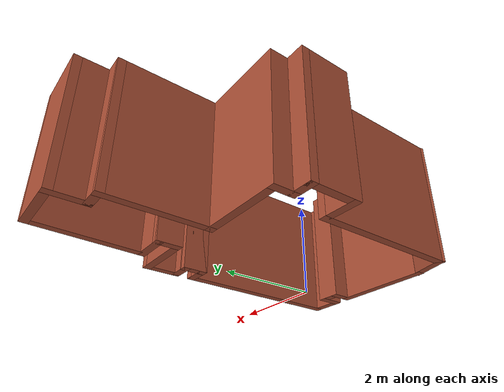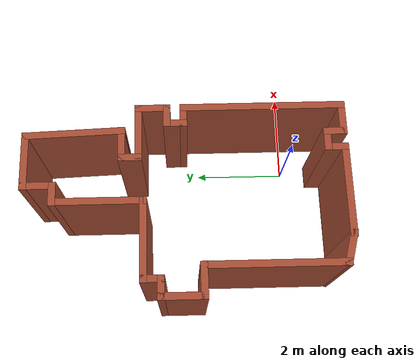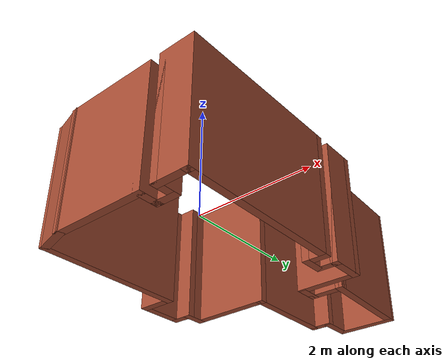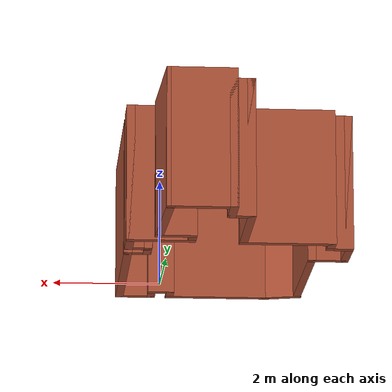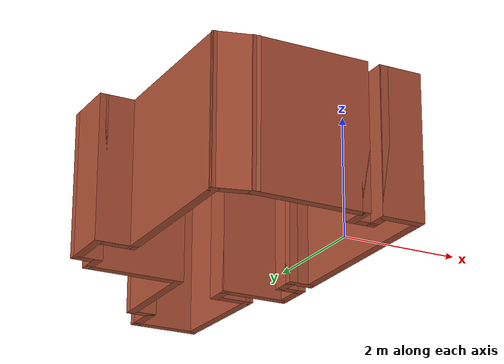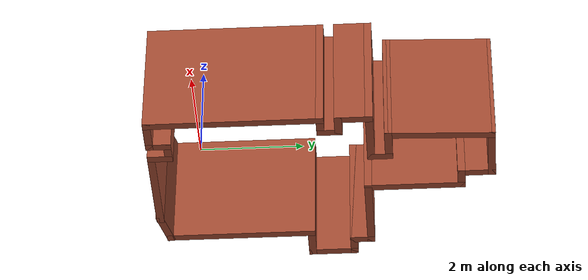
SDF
<?xml version='1.0'?>
<sdf version='1.6'>
  <model name='map_44'>
    <pose frame=''>-1.27662 2.32207 0 0 -0 0</pose>
    <link name='Wall_0'>
      <collision name='Wall_0_Collision'>
        <geometry>
          <box>
            <size>1.25 0.15 2.5</size>
          </box>
        </geometry>
        <pose frame=''>0 0 1.25 0 -0 0</pose>
      </collision>
      <visual name='Wall_0_Visual'>
        <pose frame=''>0 0 1.25 0 -0 0</pose>
        <geometry>
          <box>
            <size>1.25 0.15 2.5</size>
          </box>
        </geometry>
        <material>
          <script>
            <uri>file://media/materials/scripts/gazebo.material</uri>
            <name>Gazebo/Bricks</name>
          </script>
          <ambient>1 1 1 1</ambient>
        </material>
        <meta>
          <layer>0</layer>
        </meta>
      </visual>
      <pose frame=''>0.860222 3.33462 0 0 -0 3.14159</pose>
    </link>
    <link name='Wall_1'>
      <collision name='Wall_1_Collision'>
        <geometry>
          <box>
            <size>0.75 0.15 2.5</size>
          </box>
        </geometry>
        <pose frame=''>0 0 1.25 0 -0 0</pose>
      </collision>
      <visual name='Wall_1_Visual'>
        <pose frame=''>0 0 1.25 0 -0 0</pose>
        <geometry>
          <box>
            <size>0.75 0.15 2.5</size>
          </box>
        </geometry>
        <material>
          <script>
            <uri>file://media/materials/scripts/gazebo.material</uri>
            <name>Gazebo/Bricks</name>
          </script>
          <ambient>1 1 1 1</ambient>
        </material>
        <meta>
          <layer>0</layer>
        </meta>
      </visual>
      <pose frame=''>0.310222 3.03462 0 0 -0 -1.5708</pose>
    </link>
    <link name='Wall_13'>
      <collision name='Wall_13_Collision'>
        <geometry>
          <box>
            <size>2 0.15 2.5</size>
          </box>
        </geometry>
        <pose frame=''>0 0 1.25 0 -0 0</pose>
      </collision>
      <visual name='Wall_13_Visual'>
        <pose frame=''>0 0 1.25 0 -0 0</pose>
        <geometry>
          <box>
            <size>2 0.15 2.5</size>
          </box>
        </geometry>
        <material>
          <script>
            <uri>file://media/materials/scripts/gazebo.material</uri>
            <name>Gazebo/Bricks</name>
          </script>
          <ambient>1 1 1 1</ambient>
        </material>
        <meta>
          <layer>0</layer>
        </meta>
      </visual>
      <pose frame=''>-0.039778 1.80962 0 0 -0 -1.5708</pose>
    </link>
    <link name='Wall_14'>
      <collision name='Wall_14_Collision'>
        <geometry>
          <box>
            <size>1.75 0.15 2.5</size>
          </box>
        </geometry>
        <pose frame=''>0 0 1.25 0 -0 0</pose>
      </collision>
      <visual name='Wall_14_Visual'>
        <pose frame=''>0 0 1.25 0 -0 0</pose>
        <geometry>
          <box>
            <size>1.75 0.15 2.5</size>
          </box>
        </geometry>
        <material>
          <script>
            <uri>file://media/materials/scripts/gazebo.material</uri>
            <name>Gazebo/Bricks</name>
          </script>
          <ambient>1 1 1 1</ambient>
        </material>
        <meta>
          <layer>0</layer>
        </meta>
      </visual>
      <pose frame=''>-0.839778 0.884616 0 0 -0 3.14159</pose>
    </link>
    <link name='Wall_15'>
      <collision name='Wall_15_Collision'>
        <geometry>
          <box>
            <size>0.5 0.15 2.5</size>
          </box>
        </geometry>
        <pose frame=''>0 0 1.25 0 -0 0</pose>
      </collision>
      <visual name='Wall_15_Visual'>
        <pose frame=''>0 0 1.25 0 -0 0</pose>
        <geometry>
          <box>
            <size>0.5 0.15 2.5</size>
          </box>
        </geometry>
        <material>
          <script>
            <uri>file://media/materials/scripts/gazebo.material</uri>
            <name>Gazebo/Bricks</name>
          </script>
          <ambient>1 1 1 1</ambient>
        </material>
        <meta>
          <layer>0</layer>
        </meta>
      </visual>
      <pose frame=''>-1.63978 0.709617 0 0 -0 -1.5708</pose>
    </link>
    <link name='Wall_18'>
      <collision name='Wall_18_Collision'>
        <geometry>
          <box>
            <size>0.5 0.15 2.5</size>
          </box>
        </geometry>
        <pose frame=''>0 0 1.25 0 -0 0</pose>
      </collision>
      <visual name='Wall_18_Visual'>
        <pose frame=''>0 0 1.25 0 -0 0</pose>
        <geometry>
          <box>
            <size>0.5 0.15 2.5</size>
          </box>
        </geometry>
        <material>
          <script>
            <uri>file://media/materials/scripts/gazebo.material</uri>
            <name>Gazebo/Bricks</name>
          </script>
          <ambient>1 1 1 1</ambient>
        </material>
        <meta>
          <layer>0</layer>
        </meta>
      </visual>
      <pose frame=''>-1.81478 0.534617 0 0 -0 3.14159</pose>
    </link>
    <link name='Wall_19'>
      <collision name='Wall_19_Collision'>
        <geometry>
          <box>
            <size>1 0.15 2.5</size>
          </box>
        </geometry>
        <pose frame=''>0 0 1.25 0 -0 0</pose>
      </collision>
      <visual name='Wall_19_Visual'>
        <pose frame=''>0 0 1.25 0 -0 0</pose>
        <geometry>
          <box>
            <size>1 0.15 2.5</size>
          </box>
        </geometry>
        <material>
          <script>
            <uri>file://media/materials/scripts/gazebo.material</uri>
            <name>Gazebo/Bricks</name>
          </script>
          <ambient>1 1 1 1</ambient>
        </material>
        <meta>
          <layer>0</layer>
        </meta>
      </visual>
      <pose frame=''>-1.98978 0.109617 0 0 -0 -1.5708</pose>
    </link>
    <link name='Wall_2'>
      <collision name='Wall_2_Collision'>
        <geometry>
          <box>
            <size>0.5 0.15 2.5</size>
          </box>
        </geometry>
        <pose frame=''>0 0 1.25 0 -0 0</pose>
      </collision>
      <visual name='Wall_2_Visual'>
        <pose frame=''>0 0 1.25 0 -0 0</pose>
        <geometry>
          <box>
            <size>0.5 0.15 2.5</size>
          </box>
        </geometry>
        <material>
          <script>
            <uri>file://media/materials/scripts/gazebo.material</uri>
            <name>Gazebo/Bricks</name>
          </script>
          <ambient>1 1 1 1</ambient>
        </material>
        <meta>
          <layer>0</layer>
        </meta>
      </visual>
      <pose frame=''>0.135222 2.73462 0 0 -0 3.14159</pose>
    </link>
    <link name='Wall_20'>
      <collision name='Wall_20_Collision'>
        <geometry>
          <box>
            <size>0.75 0.15 2.5</size>
          </box>
        </geometry>
        <pose frame=''>0 0 1.25 0 -0 0</pose>
      </collision>
      <visual name='Wall_20_Visual'>
        <pose frame=''>0 0 1.25 0 -0 0</pose>
        <geometry>
          <box>
            <size>0.75 0.15 2.5</size>
          </box>
        </geometry>
        <material>
          <script>
            <uri>file://media/materials/scripts/gazebo.material</uri>
            <name>Gazebo/Bricks</name>
          </script>
          <ambient>1 1 1 1</ambient>
        </material>
        <meta>
          <layer>0</layer>
        </meta>
      </visual>
      <pose frame=''>-1.68978 -0.315384 0 0 -0 0</pose>
    </link>
    <link name='Wall_21'>
      <collision name='Wall_21_Collision'>
        <geometry>
          <box>
            <size>3 0.15 2.5</size>
          </box>
        </geometry>
        <pose frame=''>0 0 1.25 0 -0 0</pose>
      </collision>
      <visual name='Wall_21_Visual'>
        <pose frame=''>0 0 1.25 0 -0 0</pose>
        <geometry>
          <box>
            <size>3 0.15 2.5</size>
          </box>
        </geometry>
        <material>
          <script>
            <uri>file://media/materials/scripts/gazebo.material</uri>
            <name>Gazebo/Bricks</name>
          </script>
          <ambient>1 1 1 1</ambient>
        </material>
        <meta>
          <layer>0</layer>
        </meta>
      </visual>
      <pose frame=''>-1.38978 -1.74038 0 0 -0 -1.5708</pose>
    </link>
    <link name='Wall_22'>
      <collision name='Wall_22_Collision'>
        <geometry>
          <box>
            <size>0.75 0.15 2.5</size>
          </box>
        </geometry>
        <pose frame=''>0 0 1.25 0 -0 0</pose>
      </collision>
      <visual name='Wall_22_Visual'>
        <pose frame=''>0 0 1.25 0 -0 0</pose>
        <geometry>
          <box>
            <size>0.75 0.15 2.5</size>
          </box>
        </geometry>
        <material>
          <script>
            <uri>file://media/materials/scripts/gazebo.material</uri>
            <name>Gazebo/Bricks</name>
          </script>
          <ambient>1 1 1 1</ambient>
        </material>
        <meta>
          <layer>0</layer>
        </meta>
      </visual>
      <pose frame=''>-1.1 -3.24303 0 0 -0 -0.261799</pose>
    </link>
    <link name='Wall_23'>
      <collision name='Wall_23_Collision'>
        <geometry>
          <box>
            <size>2 0.15 2.5</size>
          </box>
        </geometry>
        <pose frame=''>0 0 1.25 0 -0 0</pose>
      </collision>
      <visual name='Wall_23_Visual'>
        <pose frame=''>0 0 1.25 0 -0 0</pose>
        <geometry>
          <box>
            <size>2 0.15 2.5</size>
          </box>
        </geometry>
        <material>
          <script>
            <uri>file://media/materials/scripts/gazebo.material</uri>
            <name>Gazebo/Bricks</name>
          </script>
          <ambient>1 1 1 1</ambient>
        </material>
        <meta>
          <layer>0</layer>
        </meta>
      </visual>
      <pose frame=''>0.114778 -3.32068 0 0 -0 0</pose>
    </link>
    <link name='Wall_26'>
      <collision name='Wall_26_Collision'>
        <geometry>
          <box>
            <size>0.5 0.15 2.5</size>
          </box>
        </geometry>
        <pose frame=''>0 0 1.25 0 -0 0</pose>
      </collision>
      <visual name='Wall_26_Visual'>
        <pose frame=''>0 0 1.25 0 -0 0</pose>
        <geometry>
          <box>
            <size>0.5 0.15 2.5</size>
          </box>
        </geometry>
        <material>
          <script>
            <uri>file://media/materials/scripts/gazebo.material</uri>
            <name>Gazebo/Bricks</name>
          </script>
          <ambient>1 1 1 1</ambient>
        </material>
        <meta>
          <layer>0</layer>
        </meta>
      </visual>
      <pose frame=''>1.03978 -3.14568 0 0 -0 1.5708</pose>
    </link>
    <link name='Wall_27'>
      <collision name='Wall_27_Collision'>
        <geometry>
          <box>
            <size>0.5 0.15 2.5</size>
          </box>
        </geometry>
        <pose frame=''>0 0 1.25 0 -0 0</pose>
      </collision>
      <visual name='Wall_27_Visual'>
        <pose frame=''>0 0 1.25 0 -0 0</pose>
        <geometry>
          <box>
            <size>0.5 0.15 2.5</size>
          </box>
        </geometry>
        <material>
          <script>
            <uri>file://media/materials/scripts/gazebo.material</uri>
            <name>Gazebo/Bricks</name>
          </script>
          <ambient>1 1 1 1</ambient>
        </material>
        <meta>
          <layer>0</layer>
        </meta>
      </visual>
      <pose frame=''>1.21478 -2.97067 0 0 -0 0</pose>
    </link>
    <link name='Wall_28'>
      <collision name='Wall_28_Collision'>
        <geometry>
          <box>
            <size>0.5 0.15 2.5</size>
          </box>
        </geometry>
        <pose frame=''>0 0 1.25 0 -0 0</pose>
      </collision>
      <visual name='Wall_28_Visual'>
        <pose frame=''>0 0 1.25 0 -0 0</pose>
        <geometry>
          <box>
            <size>0.5 0.15 2.5</size>
          </box>
        </geometry>
        <material>
          <script>
            <uri>file://media/materials/scripts/gazebo.material</uri>
            <name>Gazebo/Bricks</name>
          </script>
          <ambient>1 1 1 1</ambient>
        </material>
        <meta>
          <layer>0</layer>
        </meta>
      </visual>
      <pose frame=''>1.38978 -3.14568 0 0 -0 -1.5708</pose>
    </link>
    <link name='Wall_29'>
      <collision name='Wall_29_Collision'>
        <geometry>
          <box>
            <size>0.75 0.15 2.5</size>
          </box>
        </geometry>
        <pose frame=''>0 0 1.25 0 -0 0</pose>
      </collision>
      <visual name='Wall_29_Visual'>
        <pose frame=''>0 0 1.25 0 -0 0</pose>
        <geometry>
          <box>
            <size>0.75 0.15 2.5</size>
          </box>
        </geometry>
        <material>
          <script>
            <uri>file://media/materials/scripts/gazebo.material</uri>
            <name>Gazebo/Bricks</name>
          </script>
          <ambient>1 1 1 1</ambient>
        </material>
        <meta>
          <layer>0</layer>
        </meta>
      </visual>
      <pose frame=''>1.68978 -3.32068 0 0 -0 0</pose>
    </link>
    <link name='Wall_30'>
      <collision name='Wall_30_Collision'>
        <geometry>
          <box>
            <size>3.5 0.15 2.5</size>
          </box>
        </geometry>
        <pose frame=''>0 0 1.25 0 -0 0</pose>
      </collision>
      <visual name='Wall_30_Visual'>
        <pose frame=''>0 0 1.25 0 -0 0</pose>
        <geometry>
          <box>
            <size>3.5 0.15 2.5</size>
          </box>
        </geometry>
        <material>
          <script>
            <uri>file://media/materials/scripts/gazebo.material</uri>
            <name>Gazebo/Bricks</name>
          </script>
          <ambient>1 1 1 1</ambient>
        </material>
        <meta>
          <layer>0</layer>
        </meta>
      </visual>
      <pose frame=''>1.98978 -1.64567 0 0 -0 1.5708</pose>
    </link>
    <link name='Wall_31'>
      <collision name='Wall_31_Collision'>
        <geometry>
          <box>
            <size>0.5 0.15 2.5</size>
          </box>
        </geometry>
        <pose frame=''>0 0 1.25 0 -0 0</pose>
      </collision>
      <visual name='Wall_31_Visual'>
        <pose frame=''>0 0 1.25 0 -0 0</pose>
        <geometry>
          <box>
            <size>0.5 0.15 2.5</size>
          </box>
        </geometry>
        <material>
          <script>
            <uri>file://media/materials/scripts/gazebo.material</uri>
            <name>Gazebo/Bricks</name>
          </script>
          <ambient>1 1 1 1</ambient>
        </material>
        <meta>
          <layer>0</layer>
        </meta>
      </visual>
      <pose frame=''>1.81478 0.029325 0 0 -0 3.14159</pose>
    </link>
    <link name='Wall_32'>
      <collision name='Wall_32_Collision'>
        <geometry>
          <box>
            <size>0.5 0.15 2.5</size>
          </box>
        </geometry>
        <pose frame=''>0 0 1.25 0 -0 0</pose>
      </collision>
      <visual name='Wall_32_Visual'>
        <pose frame=''>0 0 1.25 0 -0 0</pose>
        <geometry>
          <box>
            <size>0.5 0.15 2.5</size>
          </box>
        </geometry>
        <material>
          <script>
            <uri>file://media/materials/scripts/gazebo.material</uri>
            <name>Gazebo/Bricks</name>
          </script>
          <ambient>1 1 1 1</ambient>
        </material>
        <meta>
          <layer>0</layer>
        </meta>
      </visual>
      <pose frame=''>1.63978 0.204325 0 0 -0 1.5708</pose>
    </link>
    <link name='Wall_33'>
      <collision name='Wall_33_Collision'>
        <geometry>
          <box>
            <size>0.5 0.15 2.5</size>
          </box>
        </geometry>
        <pose frame=''>0 0 1.25 0 -0 0</pose>
      </collision>
      <visual name='Wall_33_Visual'>
        <pose frame=''>0 0 1.25 0 -0 0</pose>
        <geometry>
          <box>
            <size>0.5 0.15 2.5</size>
          </box>
        </geometry>
        <material>
          <script>
            <uri>file://media/materials/scripts/gazebo.material</uri>
            <name>Gazebo/Bricks</name>
          </script>
          <ambient>1 1 1 1</ambient>
        </material>
        <meta>
          <layer>0</layer>
        </meta>
      </visual>
      <pose frame=''>1.81478 0.379325 0 0 -0 0</pose>
    </link>
    <link name='Wall_34'>
      <collision name='Wall_34_Collision'>
        <geometry>
          <box>
            <size>0.75 0.15 2.5</size>
          </box>
        </geometry>
        <pose frame=''>0 0 1.25 0 -0 0</pose>
      </collision>
      <visual name='Wall_34_Visual'>
        <pose frame=''>0 0 1.25 0 -0 0</pose>
        <geometry>
          <box>
            <size>0.75 0.15 2.5</size>
          </box>
        </geometry>
        <material>
          <script>
            <uri>file://media/materials/scripts/gazebo.material</uri>
            <name>Gazebo/Bricks</name>
          </script>
          <ambient>1 1 1 1</ambient>
        </material>
        <meta>
          <layer>0</layer>
        </meta>
      </visual>
      <pose frame=''>1.98978 0.679325 0 0 -0 1.5708</pose>
    </link>
    <link name='Wall_35'>
      <collision name='Wall_35_Collision'>
        <geometry>
          <box>
            <size>1.25 0.15 2.5</size>
          </box>
        </geometry>
        <pose frame=''>0 0 1.25 0 -0 0</pose>
      </collision>
      <visual name='Wall_35_Visual'>
        <pose frame=''>0 0 1.25 0 -0 0</pose>
        <geometry>
          <box>
            <size>1.25 0.15 2.5</size>
          </box>
        </geometry>
        <material>
          <script>
            <uri>file://media/materials/scripts/gazebo.material</uri>
            <name>Gazebo/Bricks</name>
          </script>
          <ambient>1 1 1 1</ambient>
        </material>
        <meta>
          <layer>0</layer>
        </meta>
      </visual>
      <pose frame=''>1.43978 0.979325 0 0 -0 3.14159</pose>
    </link>
    <link name='Wall_38'>
      <collision name='Wall_38_Collision'>
        <geometry>
          <box>
            <size>0.5 0.15 2.5</size>
          </box>
        </geometry>
        <pose frame=''>0 0 1.25 0 -0 0</pose>
      </collision>
      <visual name='Wall_38_Visual'>
        <pose frame=''>0 0 1.25 0 -0 0</pose>
        <geometry>
          <box>
            <size>0.5 0.15 2.5</size>
          </box>
        </geometry>
        <material>
          <script>
            <uri>file://media/materials/scripts/gazebo.material</uri>
            <name>Gazebo/Bricks</name>
          </script>
          <ambient>1 1 1 1</ambient>
        </material>
        <meta>
          <layer>0</layer>
        </meta>
      </visual>
      <pose frame=''>0.889778 1.15433 0 0 -0 1.5708</pose>
    </link>
    <link name='Wall_39'>
      <collision name='Wall_39_Collision'>
        <geometry>
          <box>
            <size>0.75 0.15 2.5</size>
          </box>
        </geometry>
        <pose frame=''>0 0 1.25 0 -0 0</pose>
      </collision>
      <visual name='Wall_39_Visual'>
        <pose frame=''>0 0 1.25 0 -0 0</pose>
        <geometry>
          <box>
            <size>0.75 0.15 2.5</size>
          </box>
        </geometry>
        <material>
          <script>
            <uri>file://media/materials/scripts/gazebo.material</uri>
            <name>Gazebo/Bricks</name>
          </script>
          <ambient>1 1 1 1</ambient>
        </material>
        <meta>
          <layer>0</layer>
        </meta>
      </visual>
      <pose frame=''>1.18978 1.32933 0 0 -0 0</pose>
    </link>
    <link name='Wall_40'>
      <collision name='Wall_40_Collision'>
        <geometry>
          <box>
            <size>2.15687 0.15 2.5</size>
          </box>
        </geometry>
        <pose frame=''>0 0 1.25 0 -0 0</pose>
      </collision>
      <visual name='Wall_40_Visual'>
        <pose frame=''>0 0 1.25 0 -0 0</pose>
        <geometry>
          <box>
            <size>2.15687 0.15 2.5</size>
          </box>
        </geometry>
        <material>
          <script>
            <uri>file://media/materials/scripts/gazebo.material</uri>
            <name>Gazebo/Bricks</name>
          </script>
          <ambient>1 1 1 1</ambient>
        </material>
        <meta>
          <layer>0</layer>
        </meta>
      </visual>
      <pose frame=''>1.45 2.33197 0 0 -0 1.61045</pose>
    </link>
    <static>1</static>
  </model>
</sdf>
